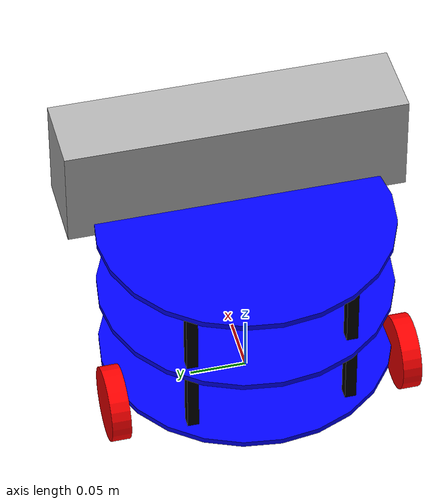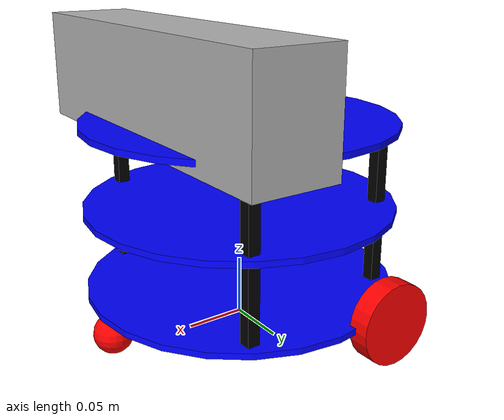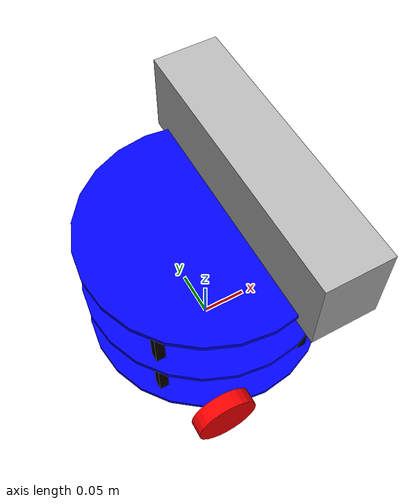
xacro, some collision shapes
<?xml version="1.0"?>
<robot name="mrobot" xmlns:xacro="http://www.ros.org/wiki/xacro">
	<xacro:include filename="$(find mrobot_gazebo)/urdf/mrobot_body.urdf.xacro"/>
	<xacro:include filename="$(find mrobot_gazebo)/urdf/kinect.xacro"/>

	<xacro:property name="kinect_offset_x" value="0.06"/>
	<xacro:property name="kinect_offset_y" value="0"/>
	<xacro:property name="kinect_offset_z" value="0.035"/>

	<!-- MRobot机器人平台 -->
	<mrobot_body/>

	<!-- Kinect -->
	<joint name="kinect_frame_joint" type="fixed">
		<origin xyz="${kinect_offset_x} ${kinect_offset_y} ${kinect_offset_z}" rpy="0 0 0"/>
		<parent link="plate_2_link"/>
		<child link="kinect_link"/>
	</joint>
	<xacro:kinect_camera prefix="kinect"/>
</robot>

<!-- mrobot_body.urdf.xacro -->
<robot name="mrobot" xmlns:xacro="http://www.ros.org/wiki/xacro">

    <!-- PROPERTY LIST -->
	<xacro:property name="M_PI" value="3.14159265358" />
	<xacro:property name="wheel_radius" value="0.033" />
	<xacro:property name="wheel_height" value="0.017" />
    <xacro:property name="wheel_mass" value="0.1"/>
    <xacro:property name="caster_radius" value="0.016"/>
    <xacro:property name="caster_mass" value="0.01"/>
    <xacro:property name="caster_joint_origin_x" value="-0.12"/>
    <xacro:property name="base_mass" value="0.5"/>
	<xacro:property name="base_link_radius" value="0.13" />
	<xacro:property name="base_link_length" value="0.005" />
	<xacro:property name="motor_x" value="-0.05" />
    <xacro:property name="plate_mass" value="0.05"/>
	<xacro:property name="plate_height" value="0.07" />
	<xacro:property name="standoff_x" value="0.12" />
	<xacro:property name="standoff_y" value="0.10" />

    <!-- COLOR LIST -->
    <material name="Black">
        <color rgba="0 0 0 1"/>
    </material>

    <material name="White">
        <color rgba="1 1 1 1"/>
    </material>

    <material name="Blue">
        <color rgba="0 0 1 1"/>
    </material>

    <material name="Red">
        <color rgba="1 0 0 1"/>
    </material>

    <material name="Yellow">
        <color rgba="1 1 0 1"/>
    </material>

    <!-- MACRO FOR INERTIA MATRIX -->
    <xacro:macro name="sphere_inertial_matrix" params="m r">
        <inertial>
            <mass value="${m}"/>
            <inertia ixx="${2*m*r*r/5}" ixy="0" ixz="0" iyy="${2*m*r*r/5}" iyz="0" izz="${2*m*r*r/5}"/>
        </inertial>
    </xacro:macro>

    <xacro:macro name="cylinder_inertial_matrix" params="m r h">
        <inertial>
            <mass value="${m}"/>
            <inertia ixx="${m*(3*r*r+h*h)/12}" ixy="0" ixz="0" iyy="${m*(3*r*r+h*h)/12}" iyz="0" izz="${m*r*r/2}"/>
        </inertial>
    </xacro:macro>

    <xacro:macro name="box_inertial_matrix" params="m w h d">
        <inertial>
            <mass value="${m}"/>
            <inertia ixx="${m*(h*h+d*d)/12}" ixy="0" ixz="0" iyy="${m*(w*w+d*d)/12}" iyz="0" izz="${m*(w*w+d*d)/12}"/>
        </inertial>
    </xacro:macro>

    <!-- MACRO FOR JOINT WHEEL -->
    <xacro:macro name="wheel" params="lr translateY">
        <link name="wheel_${lr}_link">
            <cylinder_inertial_matrix m="${wheel_mass}" r="${wheel_radius}" h="${wheel_height}"/>
            <visual>
                <origin xyz="0 0 0" rpy="${M_PI/2} 0 0"/>
                <geometry>
                    <cylinder length="${wheel_height}" radius="${wheel_radius}"/>
                </geometry>
                <material name="Red"/>
            </visual>
            <collision>
                <origin xyz="0 0 0" rpy="${M_PI/2} 0 0"/>
                <geometry>
                    <cylinder length="${wheel_height}" radius="${wheel_radius}"/>
                </geometry>
            </collision>
        </link>

        <gazebo reference="wheel_${lr}_link">
            <material>Gazebo/Red</material>
        </gazebo>

        <joint name="base_to_wheel_${lr}_joint" type="continuous">
            <origin xyz="${motor_x} ${translateY*base_link_radius} 0" rpy="0 0 0"/>
            <parent link="base_link"/>
            <child link="wheel_${lr}_link"/>
            <axis xyz="0 1 0"/>
        </joint>

        <!-- Transmission(link the joints and the controllers) -->
        <transmission name="wheel_${lr}_joint_trans">
            <type>transmission_interface/SimpleTransmission</type>
            <joint name="base_to_wheel_${lr}_joint"/>
            <acuator name="wheel_${lr}_joint_motor">
                <hardwareInterface>VelocityJointInterface</hardwareInterface>
                <mechanicalReduction>1</mechanicalReduction>
            </acuator>
        </transmission>
    </xacro:macro>

    <!-- MACRO FOR CASTER JOINT -->
    <xacro:macro name="caster" params="fb translateX">
        <link name="${fb}_caster_link">
            <sphere_inertial_matrix m="${caster_mass}" r="${caster_radius}"/>
            <visual>
                <origin xyz="0 0 0" rpy="0 0 0"/>
                <geometry>
                    <sphere radius="${caster_radius}"/>
                </geometry>
                <material name="Red"/>
            </visual>
            <collision>
                <origin xyz="0 0 0" rpy="0 0 0"/>
                <geometry>
                    <sphere radius="${caster_radius}"/>
                </geometry>
            </collision>
        </link>

        <gazebo reference="${fb}_caster_link">
            <material>Gazebo/Red</material>
        </gazebo>

        <joint name="base_to_${fb}_caster_joint" type="fixed">
            <origin xyz="${translateX*caster_joint_origin_x} 0 ${-caster_radius}" rpy="0 0 0"/>
            <parent link="base_link"/>
            <child link="${fb}_caster_link"/>
        </joint>
    </xacro:macro>

    <!-- MACRO FOR PLATE JOINT -->
    <xacro:macro name="plate" params="num parent">
        <link name="plate_${num}_link">
            <cylinder_inertial_matrix m="${plate_mass}" r="${base_link_radius}" h="${base_link_length}"/>
            <visual>
                <origin xyz="0 0 0" rpy="0 0 0"/>
                <geometry>
                    <cylinder radius="${base_link_radius}" length="${base_link_length}"/>
                </geometry>
                <material name='Blue'/>
            </visual>
            <collision>
                <origin xyz="0 0 0" rpy="0 0 0"/>
                <geometry>
                    <cylinder radius="${base_link_radius}" length="${base_link_length}"/>
                </geometry>
            </collision>
        </link>

        <gazebo reference="plate_${num}_link">
            <material>Gazebo/Blue</material>
        </gazebo>

        <joint name="plate_${num}_joint" type="fixed">
            <origin xyz="0 0 ${plate_height}" rpy="0 0 0"/>
            <parent link="${parent}"/>
            <child link="plate_${num}_link"/>
        </joint>
    </xacro:macro>

    <!-- MACRO FOR STANDOFF JOINT -->
    <xacro:macro name="mrobot_standoff_2in" params="parent number x_loc y_loc z_loc">
        <link name="standoff_2in_${number}_link">
            <inertial>
                <origin xyz="0 0 0" rpy="0 0 0"/>
                <mass value="0.001"/>
                <inertia ixx="0.0001" ixy="0.0" ixz="0.0" iyy="0.0001" iyz="0.0" izz="0.0001"/>
            </inertial>
            <visual>
                <origin xyz="0 0 0" rpy="0 0 0"/>
                <geometry>
                    <box size="0.01 0.01 0.07"/>
                </geometry>
                <material name="Black"/>
            </visual>
            <collision>
                <origin xyz="0 0 0" rpy="0 0 0"/>
                <geometry>
                    <box size="0.01 0.01 0.07"/>
                </geometry>
            </collision>
        </link>

        <gazebo reference="standoff_2in_${number}_link">
            <material>Gazebo/Black</material>
        </gazebo>

        <joint name="standoff_2in_${number}_joint" type="fixed">
            <origin xyz="${x_loc} ${y_loc} ${z_loc}" rpy="0 0 0"/>
            <parent link="${parent}"/>
            <child link="standoff_2in_${number}_link"/>
        </joint>
    </xacro:macro>

    <!-- BASE_FOOTPRINT(fictitious) -->
    <xacro:macro name="mrobot_body">
        <link name="base_footprint_link">
            <visual>
                <origin xyz="0 0 0" rpy="0 0 0"/>
                <geometry>
                    <box size="0.001 0.001 0.001"/>
                </geometry>
            </visual>
        </link>

        <joint name="base_footprint_joint" type="fixed">
            <origin xyz="0 0 ${wheel_radius}" rpy="0 0 0"/>
            <parent link="base_footprint_link"/>
            <child link="base_link"/>
        </joint>

        <!-- BASE_LINK -->
        <link name="base_link">
            <cylinder_inertial_matrix m="${base_mass}" r="${base_link_radius}" h="${base_link_length}"/>
            <visual>
                <origin xyz="0 0 0" rpy="0 0 0"/>
                <geometry>
                    <cylinder radius="${base_link_radius}" length="${base_link_length}"/>
                </geometry>
                <material name="Blue"/>
            </visual>
            <collision>
                <origin xyz="0 0 0" rpy="0 0 0"/>
                <geometry>
                    <cylinder radius="${base_link_radius}" length="${base_link_length}"/>
                </geometry>
            </collision>
        </link>

        <gazebo reference="base_link">
            <material>Gazebo/Blue</material>
        </gazebo>

        <wheel lr="right" translateY="1"/>
        <wheel lr="left" translateY="-1"/>
        <caster fb="front" translateX="-1"/>

        <mrobot_standoff_2in parent="base_link" number="1" x_loc="-${standoff_x/2 + 0.03}" y_loc="-${standoff_y - 0.03}" z_loc="${plate_height/2}"/>
        <mrobot_standoff_2in parent="base_link" number="2" x_loc="-${standoff_x/2 + 0.03}" y_loc="${standoff_y - 0.03}" z_loc="${plate_height/2}"/>
        <mrobot_standoff_2in parent="base_link" number="3" x_loc="${standoff_x/2}" y_loc="-${standoff_y}" z_loc="${plate_height/2}"/>
        <mrobot_standoff_2in parent="base_link" number="4" x_loc="${standoff_x/2}" y_loc="${standoff_y}" z_loc="${plate_height/2}"/>
        <mrobot_standoff_2in parent="standoff_2in_1_link" number="5" x_loc="0" y_loc="0" z_loc="${plate_height}"/>
        <mrobot_standoff_2in parent="standoff_2in_2_link" number="6" x_loc="0" y_loc="0" z_loc="${plate_height}"/>
        <mrobot_standoff_2in parent="standoff_2in_3_link" number="7" x_loc="0" y_loc="0" z_loc="${plate_height}"/>
        <mrobot_standoff_2in parent="standoff_2in_4_link" number="8" x_loc="0" y_loc="0" z_loc="${plate_height}"/>

        <plate num="1" parent="base_link"/>
        <plate num="2" parent="plate_1_link"/>

        <gazebo>
            <plugin name="differentiall_drive_controller" filename="libgazebo_ros_diff_drive.so">
                <rosDebugLevle>Debug</rosDebugLevle>
                <publishWheelTF>true</publishWheelTF>
                <robotNamespace>/</robotNamespace>
                <publishTf>1</publishTf>
                <publishWheelJointState>true</publishWheelJointState>
                <alwaysOn>true</alwaysOn>
                <updateRate>100.0</updateRate>
                <legacyMode>true</legacyMode>
                <leftJoint>base_to_wheel_left_joint</leftJoint>
                <rightJoint>base_to_wheel_right_joint</rightJoint>
                <wheelSeparation>${base_link_radius*2}</wheelSeparation>
                <wheelDiameter>${wheel_radius*2}</wheelDiameter>
                <broadcastTF>1</broadcastTF>
                <wheelTorque>30</wheelTorque>
                <wheelAcceleration>1.8</wheelAcceleration>
                <commandTopic>cmd_vel</commandTopic>
                <odometryFrame>odom</odometryFrame>
                <odometryTopic>odom</odometryTopic>
                <robotBaseFrame>base_footprint</robotBaseFrame>
            </plugin>
        </gazebo>
    </xacro:macro>
</robot>

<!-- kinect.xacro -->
<robot name="kinect" xmlns:xacro="http://www.ros.org/wiki/xacro">

	<xacro:macro name="kinect_camera" params="prefix:=kinect">
		<link name="${prefix}_link">
			<visual>
				<origin xyz="0 0 0" rpy="0 0 ${M_PI/2}"/>
				<geometry>
					<mesh filename="package://mrobot_description/meshes/kinect.dae"/>
				</geometry>
			</visual>
			<collision>
				<geometry>
					<box size="0.07 0.3 0.09"/>
				</geometry>
			</collision>
		</link>

		<joint name="${prefix}_optical_joint" type="fixed">
			<origin xyz="0 0 0" rpy="-1.5708 0 -1.5708"/>
			<parent link="${prefix}_link"/>
			<child link="${prefix}_frame_optical"/>
		</joint>

		<link name="${prefix}_frame_optical"/>

		<gazebo reference="${prefix}_link">
            <sensor type="depth" name="${prefix}">
                <always_on>true</always_on>
                <update_rate>20.0</update_rate>
                <camera>
                    <horizontal_fov>${60.0*M_PI/180.0}</horizontal_fov>
                    <image>
                        <format>R8G8B8</format>
                        <width>640</width>
                        <height>480</height>
                    </image>
                    <clip>
                        <near>0.05</near>
                        <far>8.0</far>
                    </clip>
                </camera>
                <plugin name="kinect_${prefix}_controller" filename="libgazebo_ros_openni_kinect.so">
                    <cameraName>${prefix}</cameraName>
                    <alwaysOn>true</alwaysOn>
                    <updateRate>10</updateRate>
                    <imageTopicName>rgb/image_raw</imageTopicName>
                    <depthImageTopicName>depth/image_raw</depthImageTopicName>
                    <pointCloudTopicName>depth/points</pointCloudTopicName>
                    <cameraInfoTopicName>rgb/camera_info</cameraInfoTopicName>
                    <depthImageCameraInfoTopicName>depth/camera_info</depthImageCameraInfoTopicName>
                    <frameName>${prefix}_frame_optical</frameName>
                    <baseline>0.1</baseline>
                    <distortion_k1>0.0</distortion_k1>
                    <distortion_k2>0.0</distortion_k2>
                    <distortion_k3>0.0</distortion_k3>
                    <distortion_t1>0.0</distortion_t1>
                    <distortion_t2>0.0</distortion_t2>
                    <pointCloudCutoff>0.4</pointCloudCutoff>
                </plugin>
            </sensor>
        </gazebo>
	</xacro:macro>
</robot>
